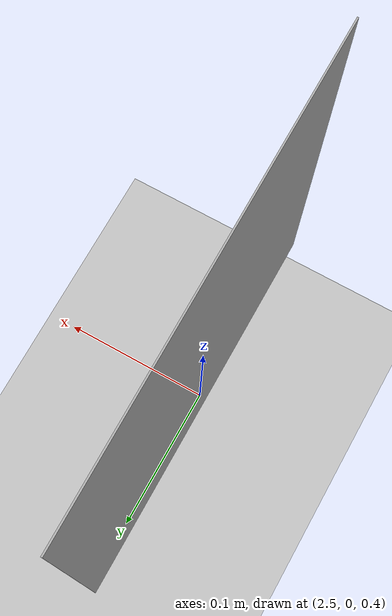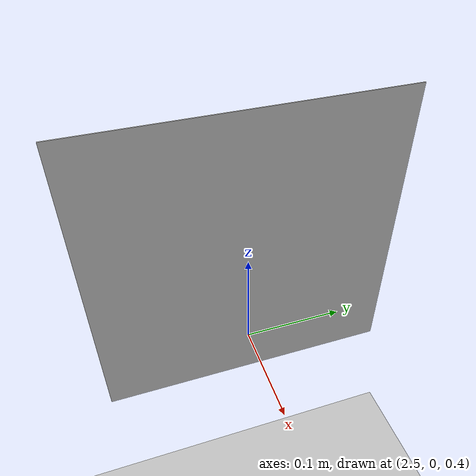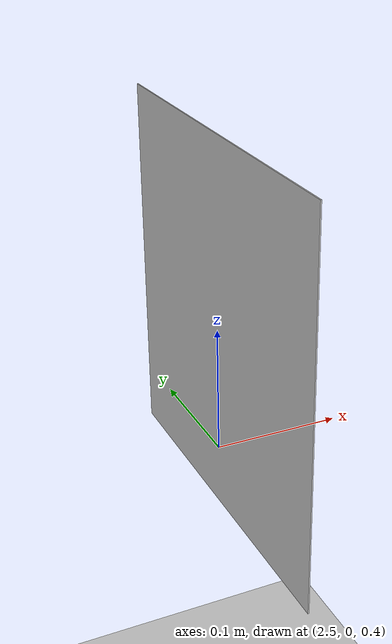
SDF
<?xml version="1.0" ?>
<sdf version="1.6">
 <world name="default">
    <include>
      <uri>model://ground_plane</uri>
    </include>
    <include>
      <uri>model://sun</uri>
    </include>

  <model name='Lab'>
    <pose frame=''>2.5 0 0.5 0 0 0</pose>
    <include>
      <uri>model://test</uri>
      <pose>0 0 0 0 0 0</pose>
    </include>
    <static>1</static>
  </model>
 </world>
</sdf>

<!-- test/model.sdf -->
<sdf version="1.4">
  <model name="qr_code2">

   <link name="qr_code_0">
      <pose>0 0 0 0 0 0</pose>
      <collision name="collision">
        <geometry>
            <box>
            <size>0.001 0.2968625 0.2968625</size>
          </box>
        </geometry>
      </collision>
      <visual name="visual">
        <geometry>
          <box>
            <size>0.001 0.2968625 0.2968625</size>
          </box>
        </geometry>
        <material>
		  <script>
            <uri>model://test/materials/scripts/qr_code_0.material</uri>
            <uri>model://test/materials/textures/qr_code_0.png</uri>
            <name>qr_code_0/Image</name>
          </script>
        </material>
      </visual>
    </link>

  </model>
</sdf>
